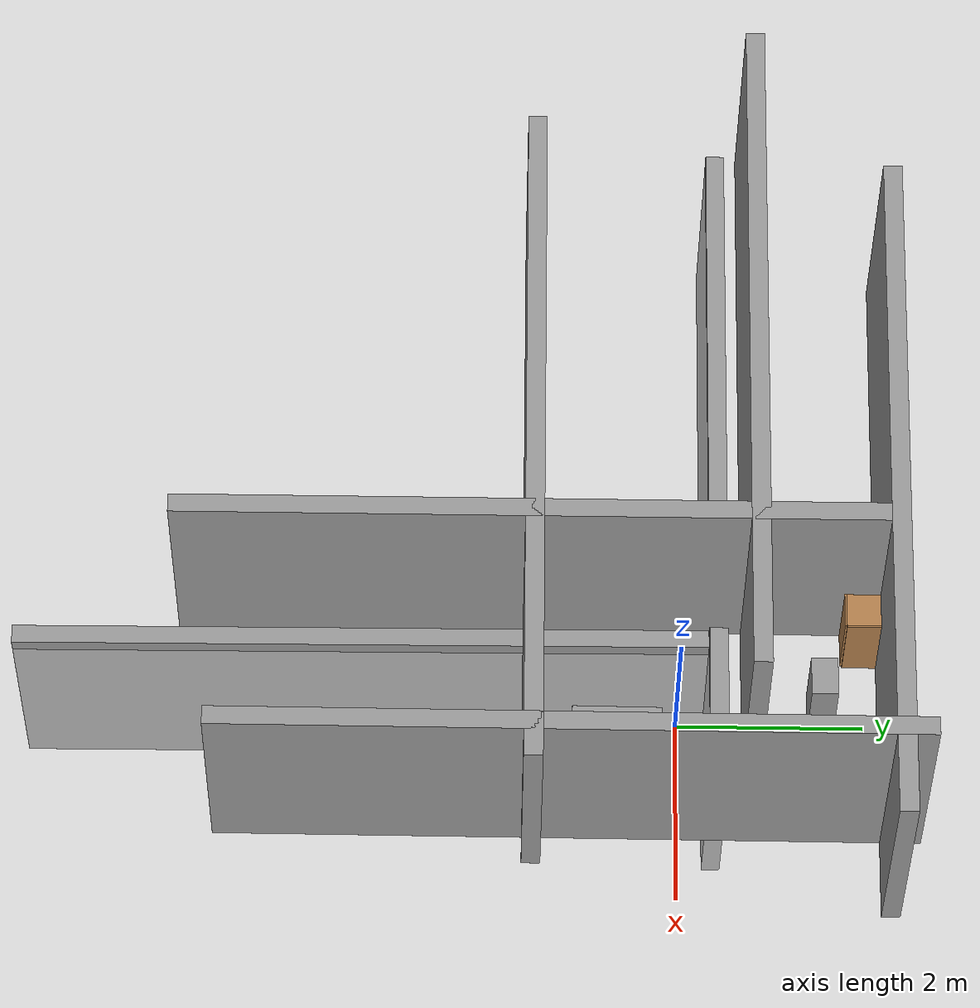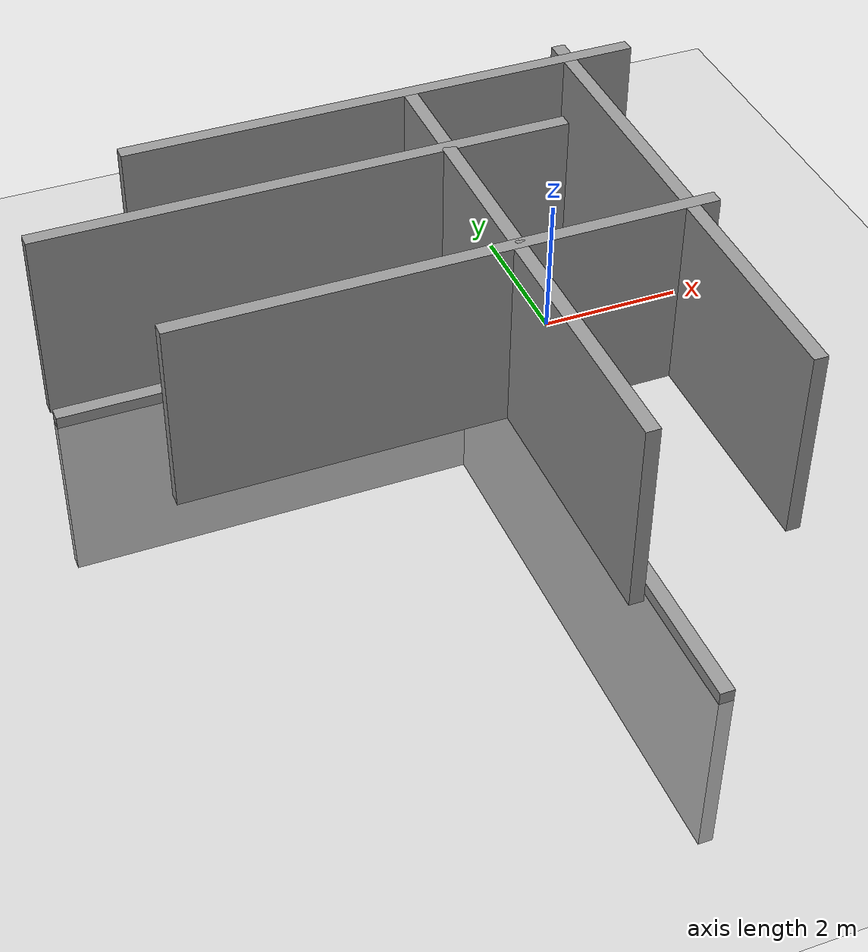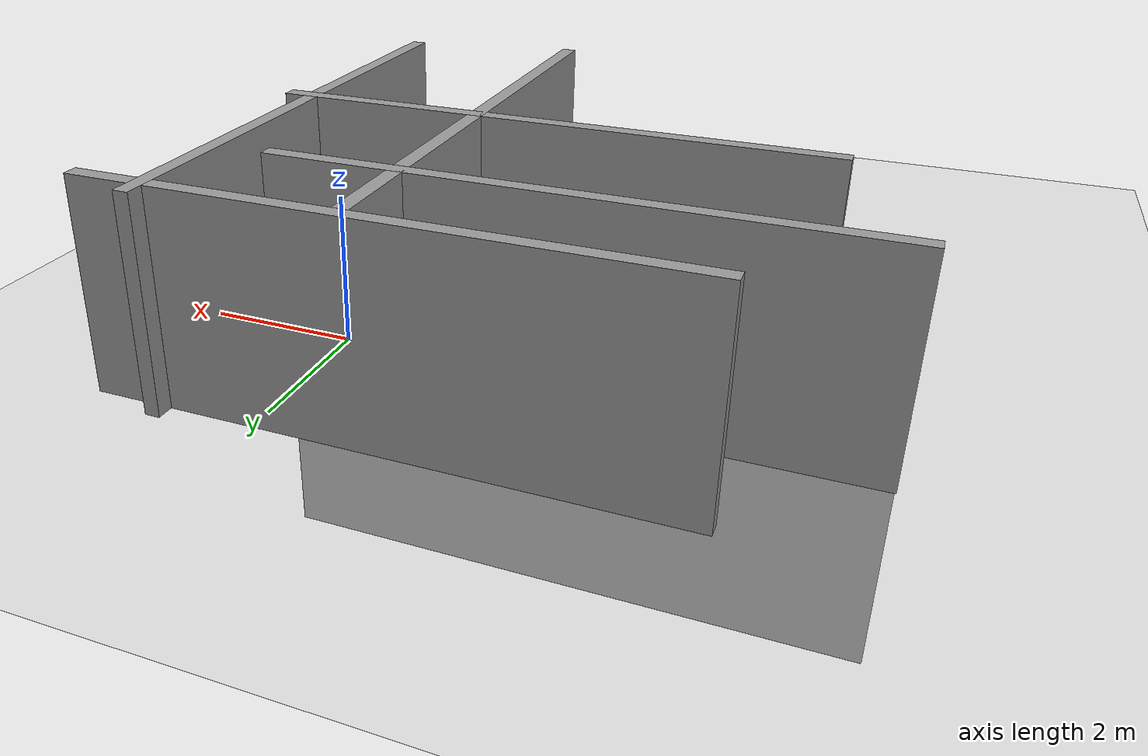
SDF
<sdf version="1.7">
 <world name="default">
  <light name="sun" type="directional">
   <pose>0 0 10 0 -0 0</pose>
   <diffuse>0.8 0.8 0.8 1</diffuse>
   <specular>0.2 0.2 0.2 1</specular>
   <attenuation>
    <range>1000</range>
    <constant>0.9</constant>
    <linear>0.01</linear>
    <quadratic>0.001</quadratic>
   </attenuation>
   <direction>-0.5 0.1 -0.9</direction>
   <spot><inner_angle>0</inner_angle><outer_angle>0</outer_angle><falloff>0</falloff></spot>
  </light>
  <model name="ground_plane">
   <static>1</static>
   <link name="link">
    <collision name="collision">
     <geometry><plane><normal>0 0 1</normal><size>5.31441e-05 5.31441e-05</size></plane></geometry>
     <surface><friction><ode><mu>100</mu><mu2>50</mu2></ode></friction></surface>
    </collision>
    <visual name="visual">
     <cast_shadows>0</cast_shadows>
     <geometry><plane><normal>0 0 1</normal><size>100 100</size></plane></geometry>
     <material>
      <script><uri>file://media/materials/scripts/gazebo.material</uri><name>Gazebo/Grey</name></script>
     </material>
    </visual>
   </link>
  </model>
  <gravity>0 0 -9.8</gravity>
  <magnetic_field>6e-06 2.3e-05 -4.2e-05</magnetic_field>
  <atmosphere type="adiabatic"/>
  <physics type="ode">
   <max_step_size>0.001</max_step_size>
   <real_time_factor>1</real_time_factor>
   <real_time_update_rate>1000</real_time_update_rate>
  </physics>
  <scene><ambient>0.4 0.4 0.4 1</ambient><background>0.7 0.7 0.7 1</background><shadows>1</shadows></scene>
  <spherical_coordinates>
   <surface_model>EARTH_WGS84</surface_model>
   <latitude_deg>0</latitude_deg>
   <longitude_deg>0</longitude_deg>
   <elevation>0</elevation>
   <heading_deg>0</heading_deg>
  </spherical_coordinates>
  <model name="grey_wall">
   <static>1</static>
   <link name="link">
    <pose>0 0 1.4 0 -0 0</pose>
    <collision name="collision"><geometry><box><size>7.5 0.2 2.8</size></box></geometry></collision>
    <visual name="visual">
     <cast_shadows>0</cast_shadows>
     <geometry><box><size>7.5 0.2 2.8</size></box></geometry>
     <material>
      <script>
       <uri>model://grey_wall/materials/scripts</uri>
       <uri>model://grey_wall/materials/textures</uri>
       <name>vrc/grey_wall</name>
      </script>
     </material>
    </visual>
   </link>
   <pose>-3.21865 0.474974 -2.64159 0 -0 0</pose>
  </model>
  <model name="grey_wall_0">
   <static>1</static>
   <link name="link">
    <pose>0 0 1.4 0 -0 0</pose>
    <collision name="collision"><geometry><box><size>7.5 0.2 2.8</size></box></geometry></collision>
    <visual name="visual">
     <cast_shadows>0</cast_shadows>
     <geometry><box><size>7.5 0.2 2.8</size></box></geometry>
     <material>
      <script>
       <uri>model://grey_wall/materials/scripts</uri>
       <uri>model://grey_wall/materials/textures</uri>
       <name>vrc/grey_wall</name>
      </script>
     </material>
    </visual>
   </link>
   <pose>-0.955969 -3.38513 -2.63248 0 0 -1.56725</pose>
  </model>
  <model name="grey_wall_1">
   <static>1</static>
   <link name="link">
    <pose>0 0 1.4 0 -0 0</pose>
    <collision name="collision"><geometry><box><size>7.5 0.2 2.8</size></box></geometry></collision>
    <visual name="visual">
     <cast_shadows>0</cast_shadows>
     <geometry><box><size>7.5 0.2 2.8</size></box></geometry>
     <material>
      <script>
       <uri>model://grey_wall/materials/scripts</uri>
       <uri>model://grey_wall/materials/textures</uri>
       <name>vrc/grey_wall</name>
      </script>
     </material>
    </visual>
   </link>
   <pose>-2.15977 -1.53662 0 0 -0 0</pose>
  </model>
  <model name="grey_wall_2">
   <static>1</static>
   <link name="link">
    <pose>0 0 1.4 0 -0 0</pose>
    <collision name="collision"><geometry><box><size>7.5 0.2 2.8</size></box></geometry></collision>
    <visual name="visual">
     <cast_shadows>0</cast_shadows>
     <geometry><box><size>7.5 0.2 2.8</size></box></geometry>
     <material>
      <script>
       <uri>model://grey_wall/materials/scripts</uri>
       <uri>model://grey_wall/materials/textures</uri>
       <name>vrc/grey_wall</name>
      </script>
     </material>
    </visual>
   </link>
   <pose>1.19896 -1.15932 0 0 0 -1.57493</pose>
  </model>
  <model name="grey_wall_3">
   <static>1</static>
   <link name="link">
    <pose>0 0 1.4 0 -0 0</pose>
    <collision name="collision"><geometry><box><size>7.5 0.2 2.8</size></box></geometry></collision>
    <visual name="visual">
     <cast_shadows>0</cast_shadows>
     <geometry><box><size>7.5 0.2 2.8</size></box></geometry>
     <material>
      <script>
       <uri>model://grey_wall/materials/scripts</uri>
       <uri>model://grey_wall/materials/textures</uri>
       <name>vrc/grey_wall</name>
      </script>
     </material>
    </visual>
   </link>
   <pose>-1.58704 2.25579 0 0 -0 0</pose>
  </model>
  <model name="grey_wall_4">
   <static>1</static>
   <link name="link">
    <pose>0 0 1.4 0 -0 0</pose>
    <collision name="collision"><geometry><box><size>7.5 0.2 2.8</size></box></geometry></collision>
    <visual name="visual">
     <cast_shadows>0</cast_shadows>
     <geometry><box><size>7.5 0.2 2.8</size></box></geometry>
     <material>
      <script>
       <uri>model://grey_wall/materials/scripts</uri>
       <uri>model://grey_wall/materials/textures</uri>
       <name>vrc/grey_wall</name>
      </script>
     </material>
    </visual>
   </link>
   <pose>-3.22897 0.806158 0 0 -0 0</pose>
  </model>
  <model name="grey_wall_5">
   <static>1</static>
   <link name="link">
    <pose>0 0 1.4 0 -0 0</pose>
    <collision name="collision"><geometry><box><size>7.5 0.2 2.8</size></box></geometry></collision>
    <visual name="visual">
     <cast_shadows>0</cast_shadows>
     <geometry><box><size>7.5 0.2 2.8</size></box></geometry>
     <material>
      <script>
       <uri>model://grey_wall/materials/scripts</uri>
       <uri>model://grey_wall/materials/textures</uri>
       <name>vrc/grey_wall</name>
      </script>
     </material>
    </visual>
   </link>
   <pose>-1.21494 -1.59087 0 0 -0 1.5691</pose>
  </model>
  <model name="cabinet_1">
   <static>1</static>
   <link name="cabinet_bottom_plate">
    <inertial>
     <pose>0 0 -1 0 -0 0</pose>
     <inertia><ixx>2.05</ixx><ixy>0</ixy><ixz>0</ixz><iyy>2.05</iyy><iyz>0</iyz><izz>2.05</izz></inertia>
     <mass>25</mass>
    </inertial>
    <collision name="cabinet_bottom_plate_geom">
     <pose>0 0 0.01 0 -0 0</pose>
     <geometry><box><size>0.45 0.45 0.02</size></box></geometry>
    </collision>
    <visual name="cabinet_bottom_plate_geom_visual">
     <pose>0 0 0.01 0 -0 0</pose>
     <geometry><box><size>0.45 0.45 0.02</size></box></geometry>
     <material>
      <script><uri>file://media/materials/scripts/gazebo.material</uri><name>Gazebo/Wood</name></script>
     </material>
    </visual>
    <collision name="cabinet_bottom_plate_geom_cabinet_back_plate">
     <pose>0.235 0 0.51 0 -0 0</pose>
     <geometry><box><size>0.02 0.45 1.02</size></box></geometry>
    </collision>
    <visual name="cabinet_bottom_plate_geom_cabinet_back_plate_visual">
     <pose>0.235 0 0.51 0 -0 0</pose>
     <geometry><box><size>0.02 0.45 1.02</size></box></geometry>
     <material>
      <script><uri>file://media/materials/scripts/gazebo.material</uri><name>Gazebo/Wood</name></script>
     </material>
    </visual>
    <collision name="cabinet_bottom_plate_geom_cabinet_left_plate">
     <pose>0 0.235 0.51 0 -0 0</pose>
     <geometry><box><size>0.45 0.02 1.02</size></box></geometry>
    </collision>
    <visual name="cabinet_bottom_plate_geom_cabinet_left_plate_visual">
     <pose>0 0.235 0.51 0 -0 0</pose>
     <geometry><box><size>0.45 0.02 1.02</size></box></geometry>
     <material>
      <script><uri>file://media/materials/scripts/gazebo.material</uri><name>Gazebo/Wood</name></script>
     </material>
    </visual>
    <collision name="cabinet_bottom_plate_geom_cabinet_middle_plate">
     <pose>0 0 0.51 0 -0 0</pose>
     <geometry><box><size>0.45 0.45 0.02</size></box></geometry>
    </collision>
    <visual name="cabinet_bottom_plate_geom_cabinet_middle_plate_visual">
     <pose>0 0 0.51 0 -0 0</pose>
     <geometry><box><size>0.45 0.45 0.02</size></box></geometry>
     <material>
      <script><uri>file://media/materials/scripts/gazebo.material</uri><name>Gazebo/Wood</name></script>
     </material>
    </visual>
    <collision name="cabinet_bottom_plate_geom_cabinet_right_plate">
     <pose>0 -0.235 0.51 0 -0 0</pose>
     <geometry><box><size>0.45 0.02 1.02</size></box></geometry>
    </collision>
    <visual name="cabinet_bottom_plate_geom_cabinet_right_plate_visual">
     <pose>0 -0.235 0.51 0 -0 0</pose>
     <geometry><box><size>0.45 0.02 1.02</size></box></geometry>
     <material>
      <script><uri>file://media/materials/scripts/gazebo.material</uri><name>Gazebo/Wood</name></script>
     </material>
    </visual>
    <collision name="cabinet_bottom_plate_geom_cabinet_top_plate">
     <pose>0 0 1.01 0 -0 0</pose>
     <geometry><box><size>0.45 0.45 0.02</size></box></geometry>
    </collision>
    <visual name="cabinet_bottom_plate_geom_cabinet_top_plate_visual">
     <pose>0 0 1.01 0 -0 0</pose>
     <geometry><box><size>0.45 0.45 0.02</size></box></geometry>
     <material>
      <script><uri>file://media/materials/scripts/gazebo.material</uri><name>Gazebo/Wood</name></script>
     </material>
    </visual>
   </link>
   <pose>-0.968275 2.01853 0 0 -0 0</pose>
  </model>
  <model name="unit_box">
   <pose>0.176768 -0.62634 0.132786 -0 -0 -0.010125</pose>
   <link name="link">
    <inertial>
     <mass>1</mass>
     <inertia>
      <ixx>0.166667</ixx>
      <ixy>0</ixy>
      <ixz>0</ixz>
      <iyy>0.166667</iyy>
      <iyz>0</iyz>
      <izz>0.166667</izz>
     </inertia>
    </inertial>
    <collision name="collision">
     <geometry><box><size>0.588333 0.960047 0.265571</size></box></geometry>
    </collision>
    <visual name="visual">
     <geometry><box><size>0.588333 0.960047 0.265571</size></box></geometry>
     <material>
      <script><name>Gazebo/Grey</name><uri>file://media/materials/scripts/gazebo.material</uri></script>
     </material>
    </visual>
   </link>
  </model>
  <model name="unit_box_0">
   <pose>-0.164252 1.54907 0.500001 1e-06 -2e-06 0.006603</pose>
   <link name="link">
    <inertial>
     <mass>1</mass>
     <inertia>
      <ixx>0.166667</ixx>
      <ixy>0</ixy>
      <ixz>0</ixz>
      <iyy>0.166667</iyy>
      <iyz>0</iyz>
      <izz>0.166667</izz>
     </inertia>
    </inertial>
    <collision name="collision"><geometry><box><size>0.407661 0.281694 1</size></box></geometry></collision>
    <visual name="visual">
     <geometry><box><size>0.407661 0.281694 1</size></box></geometry>
     <material>
      <script><name>Gazebo/Grey</name><uri>file://media/materials/scripts/gazebo.material</uri></script>
     </material>
    </visual>
   </link>
  </model>
 </world>
</sdf>
